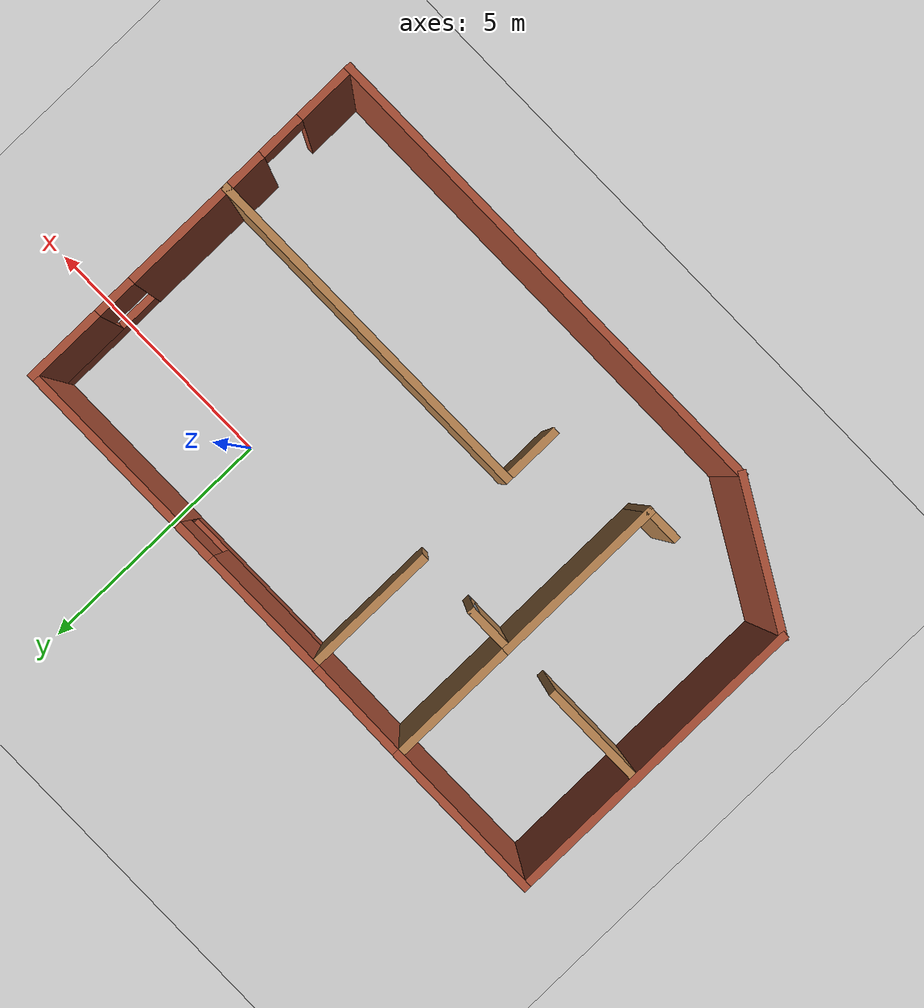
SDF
<sdf version="1.7">
 <world name="default">
  <light name="sun" type="directional">
   <cast_shadows>0</cast_shadows>
   <pose>0 0 10 0 -0 0</pose>
   <diffuse>0.8 0.8 0.8 1</diffuse>
   <specular>0.2 0.2 0.2 1</specular>
   <attenuation>
    <range>1000</range>
    <constant>0.9</constant>
    <linear>0.01</linear>
    <quadratic>0.001</quadratic>
   </attenuation>
   <direction>-0.5 0.1 -0.9</direction>
   <spot><inner_angle>0</inner_angle><outer_angle>0</outer_angle><falloff>0</falloff></spot>
  </light>
  <model name="ground_plane">
   <static>1</static>
   <link name="link">
    <collision name="collision">
     <geometry><plane><normal>0 0 1</normal><size>100 100</size></plane></geometry>
     <surface>
      <contact><collide_bitmask>65535</collide_bitmask></contact>
      <friction><ode><mu>100</mu><mu2>50</mu2></ode></friction>
     </surface>
    </collision>
    <visual name="visual">
     <cast_shadows>0</cast_shadows>
     <geometry><plane><normal>0 0 1</normal><size>100 100</size></plane></geometry>
     <material>
      <script><uri>file://media/materials/scripts/gazebo.material</uri><name>Gazebo/Grey</name></script>
     </material>
    </visual>
   </link>
  </model>
  <gravity>0 0 -9.8</gravity>
  <magnetic_field>6e-06 2.3e-05 -4.2e-05</magnetic_field>
  <atmosphere type="adiabatic"/>
  <physics type="ode">
   <max_step_size>0.001</max_step_size>
   <real_time_factor>1</real_time_factor>
   <real_time_update_rate>1000</real_time_update_rate>
  </physics>
  <scene><ambient>0.4 0.4 0.4 1</ambient><background>0.7 0.7 0.7 1</background><shadows>false</shadows></scene>
  <spherical_coordinates>
   <surface_model>EARTH_WGS84</surface_model>
   <latitude_deg>0</latitude_deg>
   <longitude_deg>0</longitude_deg>
   <elevation>0</elevation>
   <heading_deg>0</heading_deg>
  </spherical_coordinates>
  <model name="small_house">
   <pose>-2.8006 -2.13319 0 0 -0 0</pose>
   <link name="Wall_1">
    <collision name="Wall_1_Collision">
     <geometry><box><size>7 0.15 2.5</size></box></geometry>
     <pose>0 0 1.25 0 -0 0</pose>
    </collision>
    <visual name="Wall_1_Visual">
     <pose>0 0 1.25 0 -0 0</pose>
     <geometry><box><size>7 0.15 2.5</size></box></geometry>
     <material>
      <script><uri>file://media/materials/scripts/gazebo.material</uri><name>Gazebo/Wood</name></script>
      <ambient>1 1 1 1</ambient>
     </material>
     <meta><layer>0</layer></meta>
    </visual>
    <pose>2.60441 -0.824187 0 0 -0 0</pose>
   </link>
   <link name="Wall_10">
    <collision name="Wall_10_Collision">
     <geometry><box><size>3.25 0.15 2.5</size></box></geometry>
     <pose>0 0 1.25 0 -0 0</pose>
    </collision>
    <visual name="Wall_10_Visual">
     <pose>0 0 1.25 0 -0 0</pose>
     <geometry><box><size>3.25 0.15 2.5</size></box></geometry>
     <material>
      <script><uri>file://media/materials/scripts/gazebo.material</uri><name>Gazebo/Bricks</name></script>
      <ambient>1 1 1 1</ambient>
     </material>
     <meta><layer>0</layer></meta>
    </visual>
    <pose>-4.47059 3.77581 0 0 -0 3.14159</pose>
   </link>
   <link name="Wall_11">
    <collision name="Wall_11_Collision">
     <geometry><box><size>6.25 0.15 2.5</size></box></geometry>
     <pose>0 0 1.25 0 -0 0</pose>
    </collision>
    <visual name="Wall_11_Visual">
     <pose>0 0 1.25 0 -0 0</pose>
     <geometry><box><size>6.25 0.15 2.5</size></box></geometry>
     <material>
      <script><uri>file://media/materials/scripts/gazebo.material</uri><name>Gazebo/Bricks</name></script>
      <ambient>1 1 1 1</ambient>
     </material>
     <meta><layer>0</layer></meta>
    </visual>
    <pose>-6.02059 0.725813 0 0 -0 -1.5708</pose>
   </link>
   <link name="Wall_14">
    <collision name="Wall_14_Collision">
     <geometry><box><size>3 0.15 2.5</size></box></geometry>
     <pose>0 0 1.25 0 -0 0</pose>
    </collision>
    <visual name="Wall_14_Visual">
     <pose>0 0 1.25 0 -0 0</pose>
     <geometry><box><size>3 0.15 2.5</size></box></geometry>
     <material>
      <script><uri>file://media/materials/scripts/gazebo.material</uri><name>Gazebo/Bricks</name></script>
      <ambient>1 1 1 1</ambient>
     </material>
     <meta><layer>0</layer></meta>
    </visual>
    <pose>-4.78651 -3.03669 0 0 -0 -0.523599</pose>
   </link>
   <link name="Wall_17">
    <collision name="Wall_17_Collision">
     <geometry><box><size>9.75 0.15 2.5</size></box></geometry>
     <pose>0 0 1.25 0 -0 0</pose>
    </collision>
    <visual name="Wall_17_Visual">
     <pose>0 0 1.25 0 -0 0</pose>
     <geometry><box><size>9.75 0.15 2.5</size></box></geometry>
     <material>
      <script><uri>file://media/materials/scripts/gazebo.material</uri><name>Gazebo/Bricks</name></script>
      <ambient>1 1 1 1</ambient>
     </material>
     <meta><layer>0</layer></meta>
    </visual>
    <pose>1.24758 -3.74919 0 0 -0 0</pose>
   </link>
   <link name="Wall_18">
    <pose>6.03849 -2.28669 0 0 -0 1.57701</pose>
    <visual name="Wall_18_Visual_0">
     <pose>-0.899859 0 1.25 0 -0 0</pose>
     <geometry><box><size>1.27534 0.15 2.5</size></box></geometry>
     <material>
      <script><uri>file://media/materials/scripts/gazebo.material</uri><name>Gazebo/Bricks</name></script>
      <ambient>1 1 1 1</ambient>
     </material>
     <meta><layer>0</layer></meta>
    </visual>
    <collision name="Wall_18_Collision_0">
     <geometry><box><size>1.27534 0.15 2.5</size></box></geometry>
     <pose>-0.899859 0 1.25 0 -0 0</pose>
    </collision>
    <visual name="Wall_18_Visual_1">
     <pose>1.08767 0 1.25 0 -0 0</pose>
     <geometry><box><size>0.899719 0.15 2.5</size></box></geometry>
     <material>
      <script><uri>file://media/materials/scripts/gazebo.material</uri><name>Gazebo/Bricks</name></script>
      <ambient>1 1 1 1</ambient>
     </material>
     <meta><layer>0</layer></meta>
    </visual>
    <collision name="Wall_18_Collision_1">
     <geometry><box><size>0.899719 0.15 2.5</size></box></geometry>
     <pose>1.08767 0 1.25 0 -0 0</pose>
    </collision>
    <visual name="Wall_18_Visual_2">
     <pose>0.187809 0 2.25 0 -0 0</pose>
     <geometry><box><size>0.9 0.15 0.5</size></box></geometry>
     <material>
      <script><uri>file://media/materials/scripts/gazebo.material</uri><name>Gazebo/Bricks</name></script>
      <ambient>1 1 1 1</ambient>
     </material>
     <meta><layer>0</layer></meta>
    </visual>
    <collision name="Wall_18_Collision_2">
     <geometry><box><size>0.9 0.15 0.5</size></box></geometry>
     <pose>0.187809 0 2.25 0 -0 0</pose>
    </collision>
   </link>
   <link name="Wall_2">
    <pose>6.02941 1.46418 0 0 -0 1.5708</pose>
    <visual name="Wall_2_Visual_0">
     <pose>-1.19737 0 1.25 0 -0 0</pose>
     <geometry><box><size>2.33223 0.15 2.5</size></box></geometry>
     <material>
      <script><uri>file://media/materials/scripts/gazebo.material</uri><name>Gazebo/Bricks</name></script>
      <ambient>1 1 1 1</ambient>
     </material>
     <meta><layer>0</layer></meta>
    </visual>
    <collision name="Wall_2_Collision_0">
     <geometry><box><size>2.33223 0.15 2.5</size></box></geometry>
     <pose>-1.19737 0 1.25 0 -0 0</pose>
    </collision>
    <visual name="Wall_2_Visual_1">
     <pose>1.16612 0 0.25 0 -0 0</pose>
     <geometry><box><size>2.39474 0.15 0.5</size></box></geometry>
     <material>
      <script><uri>file://media/materials/scripts/gazebo.material</uri><name>Gazebo/Bricks</name></script>
      <ambient>1 1 1 1</ambient>
     </material>
     <meta><layer>0</layer></meta>
    </visual>
    <collision name="Wall_2_Collision_1">
     <geometry><box><size>2.39474 0.15 0.5</size></box></geometry>
     <pose>1.16612 0 0.25 0 -0 0</pose>
    </collision>
    <visual name="Wall_2_Visual_2">
     <pose>1.56611 0 1.5 0 -0 0</pose>
     <geometry><box><size>1.59475 0.15 2</size></box></geometry>
     <material>
      <script><uri>file://media/materials/scripts/gazebo.material</uri><name>Gazebo/Bricks</name></script>
      <ambient>1 1 1 1</ambient>
     </material>
     <meta><layer>0</layer></meta>
    </visual>
    <collision name="Wall_2_Collision_2">
     <geometry><box><size>1.59475 0.15 2</size></box></geometry>
     <pose>1.56611 0 1.5 0 -0 0</pose>
    </collision>
    <visual name="Wall_2_Visual_3">
     <pose>0.368742 0 1.9 0 -0 0</pose>
     <geometry><box><size>0.8 0.15 1.2</size></box></geometry>
     <material>
      <script><uri>file://media/materials/scripts/gazebo.material</uri><name>Gazebo/Bricks</name></script>
      <ambient>1 1 1 1</ambient>
     </material>
     <meta><layer>0</layer></meta>
    </visual>
    <collision name="Wall_2_Collision_3">
     <geometry><box><size>0.8 0.15 1.2</size></box></geometry>
     <pose>0.368742 0 1.9 0 -0 0</pose>
    </collision>
   </link>
   <link name="Wall_24">
    <collision name="Wall_24_Collision">
     <geometry><box><size>2 0.15 2.5</size></box></geometry>
     <pose>0 0 1.25 0 -0 0</pose>
    </collision>
    <visual name="Wall_24_Visual">
     <pose>0 0 1.25 0 -0 0</pose>
     <geometry><box><size>2 0.15 2.5</size></box></geometry>
     <material>
      <script><uri>file://media/materials/scripts/gazebo.material</uri><name>Gazebo/Wood</name></script>
      <ambient>1 1 1 1</ambient>
     </material>
     <meta><layer>0</layer></meta>
    </visual>
    <pose>-4.97433 1.15211 0 0 -0 0</pose>
   </link>
   <link name="Wall_26">
    <collision name="Wall_26_Collision">
     <geometry><box><size>3.5 0.15 2.5</size></box></geometry>
     <pose>0 0 1.25 0 -0 0</pose>
    </collision>
    <visual name="Wall_26_Visual">
     <pose>0 0 1.25 0 -0 0</pose>
     <geometry><box><size>3.5 0.15 2.5</size></box></geometry>
     <material>
      <script><uri>file://media/materials/scripts/gazebo.material</uri><name>Gazebo/Wood</name></script>
      <ambient>1 1 1 1</ambient>
     </material>
     <meta><layer>0</layer></meta>
    </visual>
    <pose>-2.92059 -0.499187 0 0 -0 -1.5708</pose>
   </link>
   <link name="Wall_27">
    <collision name="Wall_27_Collision">
     <geometry><box><size>0.75 0.15 2.5</size></box></geometry>
     <pose>0 0 1.25 0 -0 0</pose>
    </collision>
    <visual name="Wall_27_Visual">
     <pose>0 0 1.25 0 -0 0</pose>
     <geometry><box><size>0.75 0.15 2.5</size></box></geometry>
     <material>
      <script><uri>file://media/materials/scripts/gazebo.material</uri><name>Gazebo/Wood</name></script>
      <ambient>1 1 1 1</ambient>
     </material>
     <meta><layer>0</layer></meta>
    </visual>
    <pose>-3.22059 -2.17419 0 0 -0 3.14159</pose>
   </link>
   <link name="Wall_3">
    <pose>2.60441 3.75255 0 0 -0 3.14159</pose>
    <visual name="Wall_3_Visual_0">
     <pose>-1.69731 0 1.25 0 -0 0</pose>
     <geometry><box><size>3.60538 0.15 2.5</size></box></geometry>
     <material>
      <script><uri>file://media/materials/scripts/gazebo.material</uri><name>Gazebo/Bricks</name></script>
      <ambient>1 1 1 1</ambient>
     </material>
     <meta><layer>0</layer></meta>
    </visual>
    <collision name="Wall_3_Collision_0">
     <geometry><box><size>3.60538 0.15 2.5</size></box></geometry>
     <pose>-1.69731 0 1.25 0 -0 0</pose>
    </collision>
    <visual name="Wall_3_Visual_1">
     <pose>1.80269 0 0.25 0 -0 0</pose>
     <geometry><box><size>3.39462 0.15 0.5</size></box></geometry>
     <material>
      <script><uri>file://media/materials/scripts/gazebo.material</uri><name>Gazebo/Bricks</name></script>
      <ambient>1 1 1 1</ambient>
     </material>
     <meta><layer>0</layer></meta>
    </visual>
    <collision name="Wall_3_Collision_1">
     <geometry><box><size>3.39462 0.15 0.5</size></box></geometry>
     <pose>1.80269 0 0.25 0 -0 0</pose>
    </collision>
    <visual name="Wall_3_Visual_2">
     <pose>2.20269 0 1.5 0 -0 0</pose>
     <geometry><box><size>2.59462 0.15 2</size></box></geometry>
     <material>
      <script><uri>file://media/materials/scripts/gazebo.material</uri><name>Gazebo/Bricks</name></script>
      <ambient>1 1 1 1</ambient>
     </material>
     <meta><layer>0</layer></meta>
    </visual>
    <collision name="Wall_3_Collision_2">
     <geometry><box><size>2.59462 0.15 2</size></box></geometry>
     <pose>2.20269 0 1.5 0 -0 0</pose>
    </collision>
    <visual name="Wall_3_Visual_3">
     <pose>0.50538 0 1.9 0 -0 0</pose>
     <geometry><box><size>0.8 0.15 1.2</size></box></geometry>
     <material>
      <script><uri>file://media/materials/scripts/gazebo.material</uri><name>Gazebo/Bricks</name></script>
      <ambient>1 1 1 1</ambient>
     </material>
     <meta><layer>0</layer></meta>
    </visual>
    <collision name="Wall_3_Collision_3">
     <geometry><box><size>0.8 0.15 1.2</size></box></geometry>
     <pose>0.50538 0 1.9 0 -0 0</pose>
    </collision>
   </link>
   <link name="Wall_30">
    <collision name="Wall_30_Collision">
     <geometry><box><size>1.25 0.15 2.5</size></box></geometry>
     <pose>0 0 1.25 0 -0 0</pose>
    </collision>
    <visual name="Wall_30_Visual">
     <pose>0 0 1.25 0 -0 0</pose>
     <geometry><box><size>1.25 0.15 2.5</size></box></geometry>
     <material>
      <script><uri>file://media/materials/scripts/gazebo.material</uri><name>Gazebo/Wood</name></script>
      <ambient>1 1 1 1</ambient>
     </material>
     <meta><layer>0</layer></meta>
    </visual>
    <pose>-0.820592 -1.37419 0 0 -0 -1.5708</pose>
   </link>
   <link name="Wall_32">
    <collision name="Wall_32_Collision">
     <geometry><box><size>1 0.15 2.5</size></box></geometry>
     <pose>0 0 1.25 0 -0 0</pose>
    </collision>
    <visual name="Wall_32_Visual">
     <pose>0 0 1.25 0 -0 0</pose>
     <geometry><box><size>1 0.15 2.5</size></box></geometry>
     <material>
      <script><uri>file://media/materials/scripts/gazebo.material</uri><name>Gazebo/Wood</name></script>
      <ambient>1 1 1 1</ambient>
     </material>
     <meta><layer>0</layer></meta>
    </visual>
    <pose>-2.49559 1.17581 0 0 -0 0</pose>
   </link>
   <link name="Wall_33">
    <collision name="Wall_33_Collision">
     <geometry><box><size>0.15 0.15 2.5</size></box></geometry>
     <pose>0 0 1.25 0 -0 0</pose>
    </collision>
    <visual name="Wall_33_Visual">
     <pose>0 0 1.25 0 -0 0</pose>
     <geometry><box><size>0.15 0.15 2.5</size></box></geometry>
     <material>
      <script><uri>file://media/materials/scripts/gazebo.material</uri><name>Gazebo/Grey</name></script>
      <ambient>1 1 1 1</ambient>
     </material>
     <meta><layer>0</layer></meta>
    </visual>
    <pose>-2.07059 1.17581 0 0 -0 0</pose>
   </link>
   <link name="Wall_4">
    <collision name="Wall_4_Collision">
     <geometry><box><size>2.72716 0.15 2.5</size></box></geometry>
     <pose>0 0 1.25 0 -0 0</pose>
    </collision>
    <visual name="Wall_4_Visual">
     <pose>0 0 1.25 0 -0 0</pose>
     <geometry><box><size>2.72716 0.15 2.5</size></box></geometry>
     <material>
      <script><uri>file://media/materials/scripts/gazebo.material</uri><name>Gazebo/Wood</name></script>
      <ambient>1 1 1 1</ambient>
     </material>
     <meta><layer>0</layer></meta>
    </visual>
    <pose>-0.820592 2.46418 0 0 -0 -1.5708</pose>
   </link>
   <link name="Wall_7">
    <collision name="Wall_7_Collision">
     <geometry><box><size>2.25013 0.15 2.5</size></box></geometry>
     <pose>0 0 1.25 0 -0 0</pose>
    </collision>
    <visual name="Wall_7_Visual">
     <pose>0 0 1.25 0 -0 0</pose>
     <geometry><box><size>2.25013 0.15 2.5</size></box></geometry>
     <material>
      <script><uri>file://media/materials/scripts/gazebo.material</uri><name>Gazebo/Bricks</name></script>
      <ambient>1 1 1 1</ambient>
     </material>
     <meta><layer>0</layer></meta>
    </visual>
    <pose>-1.87059 3.76418 0 0 -0 3.13052</pose>
   </link>
   <link name="Wall_8">
    <collision name="Wall_8_Collision">
     <geometry><box><size>2.75 0.15 2.5</size></box></geometry>
     <pose>0 0 1.25 0 -0 0</pose>
    </collision>
    <visual name="Wall_8_Visual">
     <pose>0 0 1.25 0 -0 0</pose>
     <geometry><box><size>2.75 0.15 2.5</size></box></geometry>
     <material>
      <script><uri>file://media/materials/scripts/gazebo.material</uri><name>Gazebo/Wood</name></script>
      <ambient>1 1 1 1</ambient>
     </material>
     <meta><layer>0</layer></meta>
    </visual>
    <pose>-2.92059 2.47581 0 0 -0 -1.5708</pose>
   </link>
   <static>1</static>
  </model>
 </world>
</sdf>
